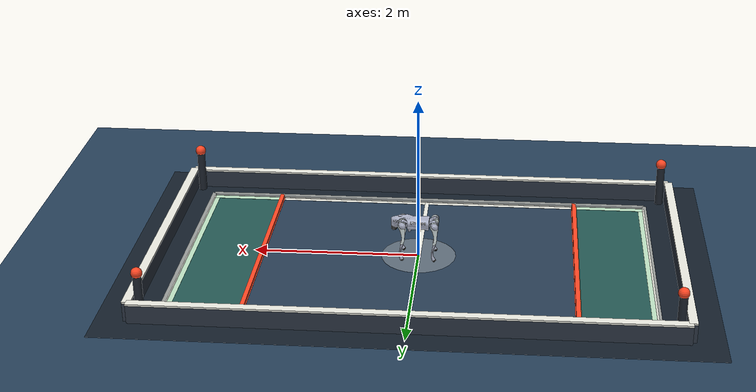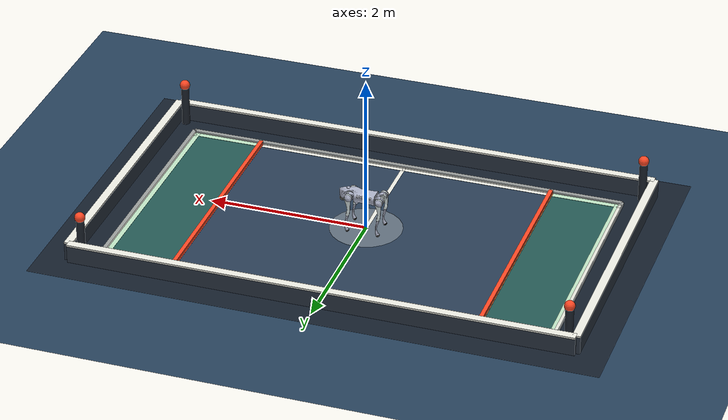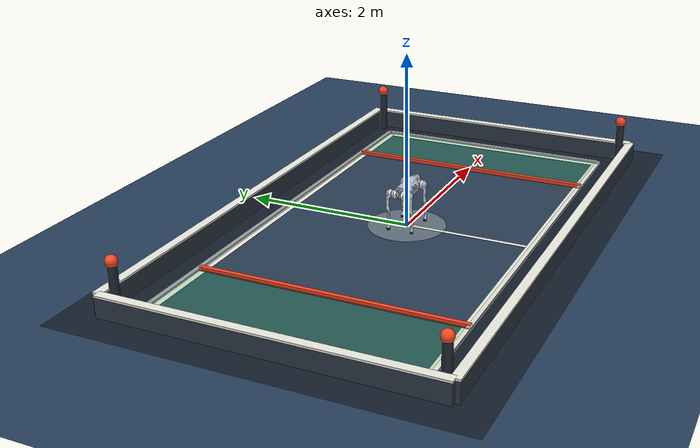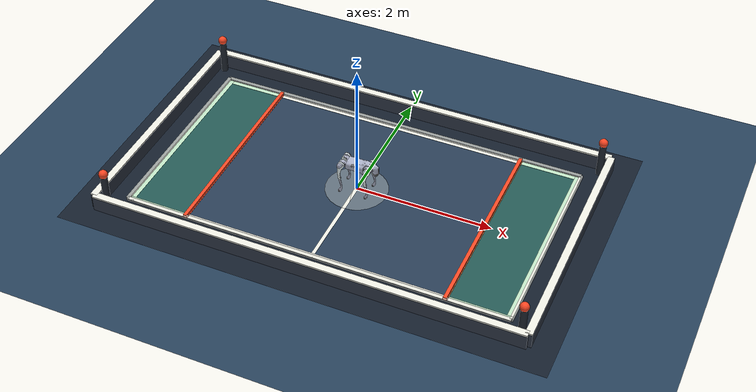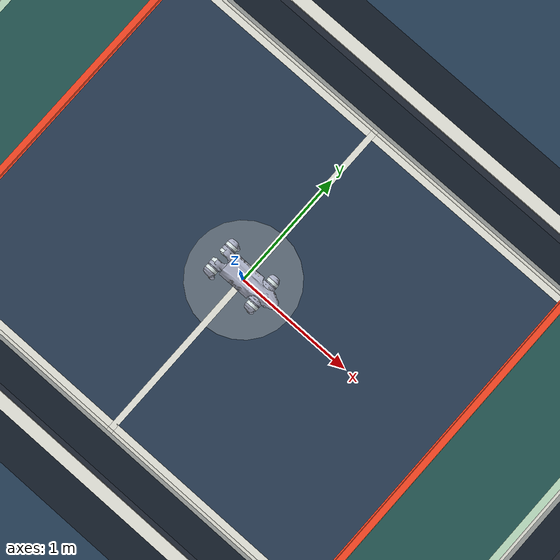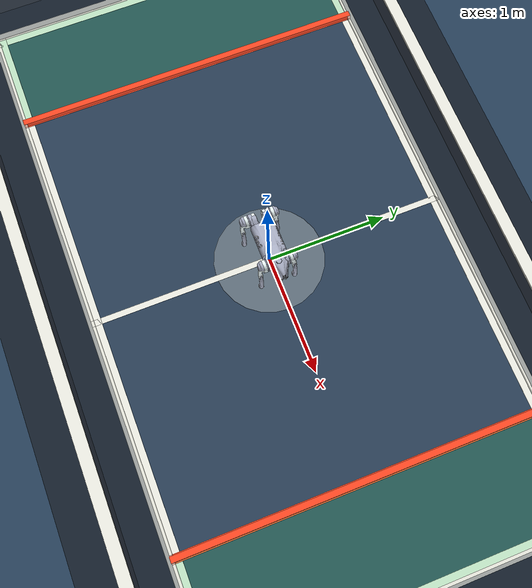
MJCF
<mujoco model="mjlab scene">
  <compiler angle="radian" meshdir="assets" />
  <option timestep="0.005" integrator="implicitfast" iterations="10" ls_iterations="20" ccd_iterations="100" />
  <size nkey="1" />
  <visual>
    <global azimuth="135" elevation="-25" offwidth="1920" offheight="1080" />
    <quality shadowsize="8192" />
    <headlight ambient="0.3 0.3 0.3" diffuse="0.6 0.6 0.6" specular="0 0 0" />
    <scale forcewidth="0.25" contactwidth="0.4" contactheight="0.15" framelength="5" framewidth="0.3" />
    <rgba haze="0.15 0.25 0.35 1" force="1 0 0 1" />
  </visual>
  <statistic meansize="0.03" extent="4" />
  <default>
    <default class="a_main">
      <default class="a_go2">
        <site group="5" rgba="1 0 0 1" />
        <default class="a_visual">
          <geom type="mesh" contype="0" conaffinity="0" group="2" density="0" />
        </default>
        <default class="a_collision">
          <geom condim="6" group="3" priority="1" />
        </default>
      </default>
    </default>
    <default class="b_main">
      <default class="b_go2">
        <site group="5" rgba="1 0 0 1" />
        <default class="b_visual">
          <geom type="mesh" contype="0" conaffinity="0" group="2" density="0" />
        </default>
        <default class="b_collision">
          <geom condim="6" group="3" priority="1" />
        </default>
      </default>
    </default>
  </default>
  <asset>
    <texture type="2d" colorspace="auto" name="groundplane" builtin="checker" mark="edge" rgb1="0.2 0.3 0.4" rgb2="0.1 0.2 0.3" markrgb="0.8 0.8 0.8" width="300" height="300" />
    <material name="groundplane" texture="groundplane" texuniform="true" texrepeat="4 4" />
    <material name="a_metal" rgba="0.9 0.95 0.95 1" />
    <material name="a_black" rgba="0 0 0 1" />
    <material name="a_white" />
    <material name="a_gray" rgba="0.671705 0.692426 0.77427 1" />
    <material name="b_metal" rgba="0.9 0.95 0.95 1" />
    <material name="b_black" rgba="0 0 0 1" />
    <material name="b_white" />
    <material name="b_gray" rgba="0.671705 0.692426 0.77427 1" />
    <mesh name="a_base_0" file="base_0.obj" />
    <mesh name="a_base_1" file="base_1.obj" />
    <mesh name="a_base_2" file="base_2.obj" />
    <mesh name="a_base_3" file="base_3.obj" />
    <mesh name="a_base_4" file="base_4.obj" />
    <mesh name="a_hip_0" file="hip_0.obj" />
    <mesh name="a_hip_1" file="hip_1.obj" />
    <mesh name="a_thigh_0" file="thigh_0.obj" />
    <mesh name="a_thigh_1" file="thigh_1.obj" />
    <mesh name="a_thigh_mirror_0" file="thigh_mirror_0.obj" />
    <mesh name="a_thigh_mirror_1" file="thigh_mirror_1.obj" />
    <mesh name="a_calf_0" file="calf_0.obj" />
    <mesh name="a_calf_1" file="calf_1.obj" />
    <mesh name="a_calf_mirror_0" file="calf_mirror_0.obj" />
    <mesh name="a_calf_mirror_1" file="calf_mirror_1.obj" />
    <mesh name="a_foot" file="foot.obj" />
    <mesh name="b_base_0" file="base_0.obj" />
    <mesh name="b_base_1" file="base_1.obj" />
    <mesh name="b_base_2" file="base_2.obj" />
    <mesh name="b_base_3" file="base_3.obj" />
    <mesh name="b_base_4" file="base_4.obj" />
    <mesh name="b_hip_0" file="hip_0.obj" />
    <mesh name="b_hip_1" file="hip_1.obj" />
    <mesh name="b_thigh_0" file="thigh_0.obj" />
    <mesh name="b_thigh_1" file="thigh_1.obj" />
    <mesh name="b_thigh_mirror_0" file="thigh_mirror_0.obj" />
    <mesh name="b_thigh_mirror_1" file="thigh_mirror_1.obj" />
    <mesh name="b_calf_0" file="calf_0.obj" />
    <mesh name="b_calf_1" file="calf_1.obj" />
    <mesh name="b_calf_mirror_0" file="calf_mirror_0.obj" />
    <mesh name="b_calf_mirror_1" file="calf_mirror_1.obj" />
    <mesh name="b_foot" file="foot.obj" />
  </asset>
  <worldbody>
    <site name="env_origin_0" pos="0 0 0" size="0.3" group="4" rgba="0.2 0.6 0.2 0.3" />
    <light name="sun" pos="0 0 1.5" dir="0 0 -1" type="directional" />
    <body name="terrain">
      <geom name="terrain" size="0 0 0.01" type="plane" material="groundplane" />
    </body>
    <body name="a_base_link" childclass="a_go2" pos="0 0 0.445">
      <inertial pos="0.021112 0 -0.005366" quat="-0.000543471 0.713435 -0.00173769 0.700719" mass="6.921" diaginertia="0.107027 0.0980771 0.0244531" />
      <joint name="a_floating_base_joint" type="free" />
      <geom class="a_visual" material="a_black" mesh="a_base_0" />
      <geom class="a_visual" material="a_black" mesh="a_base_1" />
      <geom class="a_visual" material="a_black" mesh="a_base_2" />
      <geom class="a_visual" material="a_white" mesh="a_base_3" />
      <geom class="a_visual" material="a_gray" mesh="a_base_4" />
      <geom name="a_base1_collision" class="a_collision" size="0.1881 0.04675 0.057" type="box" conaffinity="2" condim="1" priority="0" />
      <geom name="a_base2_collision" class="a_collision" size="0.05 0.045" pos="0.285 0 0.01" type="cylinder" conaffinity="2" condim="1" priority="0" />
      <geom name="a_base3_collision" class="a_collision" size="0.047" pos="0.293 0 -0.06" conaffinity="2" condim="1" priority="0" />
      <site name="a_imu" pos="-0.02557 0 0.04232" />
      <site name="a_corner_FL" pos="0.1881 0.04675 -0.057" group="4" rgba="1 1 0 0.5" />
      <site name="a_corner_FR" pos="0.1881 -0.04675 -0.057" group="4" rgba="1 1 0 0.5" />
      <site name="a_corner_RL" pos="-0.1881 0.04675 -0.057" group="4" rgba="1 1 0 0.5" />
      <site name="a_corner_RR" pos="-0.1881 -0.04675 -0.057" group="4" rgba="1 1 0 0.5" />
      <site name="a_corner_FL_top" pos="0.1881 0.04675 0.057" group="4" rgba="1 0.5 0 0.5" />
      <site name="a_corner_FR_top" pos="0.1881 -0.04675 0.057" group="4" rgba="1 0.5 0 0.5" />
      <site name="a_corner_RL_top" pos="-0.1881 0.04675 0.057" group="4" rgba="1 0.5 0 0.5" />
      <site name="a_corner_RR_top" pos="-0.1881 -0.04675 0.057" group="4" rgba="1 0.5 0 0.5" />
      <site name="a_head_bottom" pos="0.293 0 -0.107" group="4" rgba="1 0 0 0.5" />
      <body name="a_FL_hip" pos="0.1934 0.0465 0">
        <inertial pos="-0.0054 0.00194 -0.000105" quat="0.497014 0.499245 0.505462 0.498237" mass="0.678" diaginertia="0.00088403 0.000596003 0.000479967" />
        <joint name="a_FL_hip_joint" pos="0 0 0" axis="1 0 0" range="-1.0472 1.0472" armature="0.01" />
        <geom class="a_visual" material="a_metal" mesh="a_hip_0" />
        <geom class="a_visual" material="a_gray" mesh="a_hip_1" />
        <geom name="a_FL_hip_collision" class="a_collision" size="0.046 0.02" pos="0 0.08 0" quat="0.707107 0.707107 0 0" type="cylinder" conaffinity="2" condim="1" priority="0" />
        <site name="a_shoulder_FL" pos="0 0.1 0.046" group="4" rgba="1 0 0.5 0.5" />
        <body name="a_FL_thigh" pos="0 0.0955 0">
          <inertial pos="-0.00374 -0.0223 -0.0327" quat="0.829533 0.0847635 -0.0200632 0.551623" mass="1.152" diaginertia="0.00594973 0.00584149 0.000878787" />
          <joint name="a_FL_thigh_joint" pos="0 0 0" axis="0 1 0" range="-1.5708 3.4907" armature="0.01" />
          <geom class="a_visual" material="a_metal" mesh="a_thigh_0" />
          <geom class="a_visual" material="a_gray" mesh="a_thigh_1" />
          <geom name="a_FL_thigh_collision" class="a_collision" size="0.1065 0.01225 0.017" pos="0 0 -0.1065" quat="0.707107 0 0.707107 0" type="box" conaffinity="2" condim="1" priority="0" />
          <body name="a_FL_calf" pos="0 0 -0.213">
            <inertial pos="0.00629595 -0.000622121 -0.141417" quat="0.710672 0.00154099 -0.00450087 0.703508" mass="0.241352" diaginertia="0.0014901 0.00146356 5.31397e-05" />
            <joint name="a_FL_calf_joint" pos="0 0 0" axis="0 1 0" range="-2.7227 -0.83776" armature="0.02" />
            <geom class="a_visual" material="a_gray" mesh="a_calf_0" />
            <geom class="a_visual" material="a_black" mesh="a_calf_1" />
            <geom name="a_FL_calf1_collision" class="a_collision" size="0.012 0.06" pos="0.008 0 -0.06" quat="0.994493 0 -0.104807 0" type="cylinder" conaffinity="2" condim="1" priority="0" />
            <geom name="a_FL_calf2_collision" class="a_collision" size="0.011 0.0325" pos="0.02 0 -0.148" quat="0.999688 0 0.0249974 0" type="cylinder" conaffinity="2" condim="1" priority="0" />
            <geom class="a_visual" pos="0 0 -0.213" quat="1 0 0 0" material="a_black" mesh="a_foot" />
            <geom name="a_FL_foot_collision" class="a_collision" size="0.022" pos="0 0 -0.213" conaffinity="2" condim="3" friction="0.6" solimp="0.9 0.95 0.023" />
            <site name="a_elbow_FL" pos="-0.0165 0 0" group="4" rgba="0 1 1 0.5" />
            <site name="a_toe_FL" pos="-0.002 0 -0.213" group="4" rgba="0 1 0 0.5" />
            <site name="a_FL" pos="0 0 -0.213" size="0.022" />
          </body>
        </body>
      </body>
      <body name="a_FR_hip" pos="0.1934 -0.0465 0">
        <inertial pos="-0.0054 -0.00194 -0.000105" quat="0.498237 0.505462 0.499245 0.497014" mass="0.678" diaginertia="0.00088403 0.000596003 0.000479967" />
        <joint name="a_FR_hip_joint" pos="0 0 0" axis="1 0 0" range="-1.0472 1.0472" armature="0.01" />
        <geom class="a_visual" quat="4.63268e-05 1 0 0" material="a_metal" mesh="a_hip_0" />
        <geom class="a_visual" quat="4.63268e-05 1 0 0" material="a_gray" mesh="a_hip_1" />
        <geom name="a_FR_hip_collision" class="a_collision" size="0.046 0.02" pos="0 -0.08 0" quat="0.707107 0.707107 0 0" type="cylinder" conaffinity="2" condim="1" priority="0" />
        <site name="a_shoulder_FR" pos="0 -0.1 0.046" group="4" rgba="1 0 0.5 0.5" />
        <body name="a_FR_thigh" pos="0 -0.0955 0">
          <inertial pos="-0.00374 0.0223 -0.0327" quat="0.551623 -0.0200632 0.0847635 0.829533" mass="1.152" diaginertia="0.00594973 0.00584149 0.000878787" />
          <joint name="a_FR_thigh_joint" pos="0 0 0" axis="0 1 0" range="-1.5708 3.4907" armature="0.01" />
          <geom class="a_visual" material="a_metal" mesh="a_thigh_mirror_0" />
          <geom class="a_visual" material="a_gray" mesh="a_thigh_mirror_1" />
          <geom name="a_FR_thigh_collision" class="a_collision" size="0.1065 0.01225 0.017" pos="0 0 -0.1065" quat="0.707107 0 0.707107 0" type="box" conaffinity="2" condim="1" priority="0" />
          <body name="a_FR_calf" pos="0 0 -0.213">
            <inertial pos="0.00629595 0.000622121 -0.141417" quat="0.703508 -0.00450087 0.00154099 0.710672" mass="0.241352" diaginertia="0.0014901 0.00146356 5.31397e-05" />
            <joint name="a_FR_calf_joint" pos="0 0 0" axis="0 1 0" range="-2.7227 -0.83776" armature="0.02" />
            <geom class="a_visual" material="a_gray" mesh="a_calf_mirror_0" />
            <geom class="a_visual" material="a_black" mesh="a_calf_mirror_1" />
            <geom name="a_FR_calf1_collision" class="a_collision" size="0.013 0.06" pos="0.01 0 -0.06" quat="0.995004 0 -0.0998334 0" type="cylinder" conaffinity="2" condim="1" priority="0" />
            <geom name="a_FR_calf2_collision" class="a_collision" size="0.011 0.0325" pos="0.02 0 -0.148" quat="0.999688 0 0.0249974 0" type="cylinder" conaffinity="2" condim="1" priority="0" />
            <geom class="a_visual" pos="0 0 -0.213" quat="1 0 0 0" material="a_black" mesh="a_foot" />
            <geom name="a_FR_foot_collision" class="a_collision" size="0.022" pos="0 0 -0.213" conaffinity="2" condim="3" friction="0.6" solimp="0.9 0.95 0.023" />
            <site name="a_elbow_FR" pos="-0.0165 0 0" group="4" rgba="0 1 1 0.5" />
            <site name="a_toe_FR" pos="-0.002 0 -0.213" group="4" rgba="0 1 0 0.5" />
            <site name="a_FR" pos="0 0 -0.213" size="0.022" />
          </body>
        </body>
      </body>
      <body name="a_RL_hip" pos="-0.1934 0.0465 0">
        <inertial pos="0.0054 0.00194 -0.000105" quat="0.505462 0.498237 0.497014 0.499245" mass="0.678" diaginertia="0.00088403 0.000596003 0.000479967" />
        <joint name="a_RL_hip_joint" pos="0 0 0" axis="1 0 0" range="-1.0472 1.0472" armature="0.01" />
        <geom class="a_visual" quat="4.63268e-05 0 1 0" material="a_metal" mesh="a_hip_0" />
        <geom class="a_visual" quat="4.63268e-05 0 1 0" material="a_gray" mesh="a_hip_1" />
        <geom name="a_RL_hip_collision" class="a_collision" size="0.046 0.02" pos="0 0.08 0" quat="0.707107 0.707107 0 0" type="cylinder" conaffinity="2" condim="1" priority="0" />
        <site name="a_shoulder_RL" pos="0 0.1 0.046" group="4" rgba="1 0 0.5 0.5" />
        <body name="a_RL_thigh" pos="0 0.0955 0">
          <inertial pos="-0.00374 -0.0223 -0.0327" quat="0.829533 0.0847635 -0.0200632 0.551623" mass="1.152" diaginertia="0.00594973 0.00584149 0.000878787" />
          <joint name="a_RL_thigh_joint" pos="0 0 0" axis="0 1 0" range="-0.5236 4.5379" armature="0.01" />
          <geom class="a_visual" material="a_metal" mesh="a_thigh_0" />
          <geom class="a_visual" material="a_gray" mesh="a_thigh_1" />
          <geom name="a_RL_thigh_collision" class="a_collision" size="0.1065 0.01225 0.017" pos="0 0 -0.1065" quat="0.707107 0 0.707107 0" type="box" conaffinity="2" condim="1" priority="0" />
          <body name="a_RL_calf" pos="0 0 -0.213">
            <inertial pos="0.00629595 -0.000622121 -0.141417" quat="0.710672 0.00154099 -0.00450087 0.703508" mass="0.241352" diaginertia="0.0014901 0.00146356 5.31397e-05" />
            <joint name="a_RL_calf_joint" pos="0 0 0" axis="0 1 0" range="-2.7227 -0.83776" armature="0.02" />
            <geom class="a_visual" material="a_gray" mesh="a_calf_0" />
            <geom class="a_visual" material="a_black" mesh="a_calf_1" />
            <geom name="a_RL_calf1_collision" class="a_collision" size="0.013 0.06" pos="0.01 0 -0.06" quat="0.995004 0 -0.0998334 0" type="cylinder" conaffinity="2" condim="1" priority="0" />
            <geom name="a_RL_calf2_collision" class="a_collision" size="0.011 0.0325" pos="0.02 0 -0.148" quat="0.999688 0 0.0249974 0" type="cylinder" conaffinity="2" condim="1" priority="0" />
            <geom class="a_visual" pos="0 0 -0.213" quat="1 0 0 0" material="a_black" mesh="a_foot" />
            <geom name="a_RL_foot_collision" class="a_collision" size="0.022" pos="0 0 -0.213" conaffinity="2" condim="3" friction="0.6" solimp="0.9 0.95 0.023" />
            <site name="a_elbow_RL" pos="-0.0165 0 0" group="4" rgba="0 1 1 0.5" />
            <site name="a_toe_RL" pos="-0.002 0 -0.213" group="4" rgba="0 1 0 0.5" />
            <site name="a_RL" pos="0 0 -0.213" size="0.022" />
          </body>
        </body>
      </body>
      <body name="a_RR_hip" pos="-0.1934 -0.0465 0">
        <inertial pos="0.0054 -0.00194 -0.000105" quat="0.499245 0.497014 0.498237 0.505462" mass="0.678" diaginertia="0.00088403 0.000596003 0.000479967" />
        <joint name="a_RR_hip_joint" pos="0 0 0" axis="1 0 0" range="-1.0472 1.0472" armature="0.01" />
        <geom class="a_visual" quat="2.14617e-09 4.63268e-05 4.63268e-05 -1" material="a_metal" mesh="a_hip_0" />
        <geom class="a_visual" quat="2.14617e-09 4.63268e-05 4.63268e-05 -1" material="a_gray" mesh="a_hip_1" />
        <geom name="a_RR_hip_collision" class="a_collision" size="0.046 0.02" pos="0 -0.08 0" quat="0.707107 0.707107 0 0" type="cylinder" conaffinity="2" condim="1" priority="0" />
        <site name="a_shoulder_RR" pos="0 -0.1 0.046" group="4" rgba="1 0 0.5 0.5" />
        <body name="a_RR_thigh" pos="0 -0.0955 0">
          <inertial pos="-0.00374 0.0223 -0.0327" quat="0.551623 -0.0200632 0.0847635 0.829533" mass="1.152" diaginertia="0.00594973 0.00584149 0.000878787" />
          <joint name="a_RR_thigh_joint" pos="0 0 0" axis="0 1 0" range="-0.5236 4.5379" armature="0.01" />
          <geom class="a_visual" material="a_metal" mesh="a_thigh_mirror_0" />
          <geom class="a_visual" material="a_gray" mesh="a_thigh_mirror_1" />
          <geom name="a_RR_thigh_collision" class="a_collision" size="0.1065 0.01225 0.017" pos="0 0 -0.1065" quat="0.707107 0 0.707107 0" type="box" conaffinity="2" condim="1" priority="0" />
          <body name="a_RR_calf" pos="0 0 -0.213">
            <inertial pos="0.00629595 0.000622121 -0.141417" quat="0.703508 -0.00450087 0.00154099 0.710672" mass="0.241352" diaginertia="0.0014901 0.00146356 5.31397e-05" />
            <joint name="a_RR_calf_joint" pos="0 0 0" axis="0 1 0" range="-2.7227 -0.83776" armature="0.02" />
            <geom class="a_visual" material="a_gray" mesh="a_calf_mirror_0" />
            <geom class="a_visual" material="a_black" mesh="a_calf_mirror_1" />
            <geom name="a_RR_calf1_collision" class="a_collision" size="0.013 0.06" pos="0.01 0 -0.06" quat="0.995004 0 -0.0998334 0" type="cylinder" conaffinity="2" condim="1" priority="0" />
            <geom name="a_RR_calf2_collision" class="a_collision" size="0.011 0.0325" pos="0.02 0 -0.148" quat="0.999688 0 0.0249974 0" type="cylinder" conaffinity="2" condim="1" priority="0" />
            <geom class="a_visual" pos="0 0 -0.213" quat="1 0 0 0" material="a_black" mesh="a_foot" />
            <geom name="a_RR_foot_collision" class="a_collision" size="0.022" pos="0 0 -0.213" conaffinity="2" condim="3" friction="0.6" solimp="0.9 0.95 0.023" />
            <site name="a_elbow_RR" pos="-0.0165 0 0" group="4" rgba="0 1 1 0.5" />
            <site name="a_toe_RR" pos="-0.002 0 -0.213" group="4" rgba="0 1 0 0.5" />
            <site name="a_RR" pos="0 0 -0.213" size="0.022" />
          </body>
        </body>
      </body>
    </body>
    <body name="b_base_link" childclass="b_go2" pos="0 0 0.445">
      <inertial pos="0.021112 0 -0.005366" quat="-0.000543471 0.713435 -0.00173769 0.700719" mass="6.921" diaginertia="0.107027 0.0980771 0.0244531" />
      <joint name="b_floating_base_joint" type="free" />
      <geom class="b_visual" material="b_black" mesh="b_base_0" />
      <geom class="b_visual" material="b_black" mesh="b_base_1" />
      <geom class="b_visual" material="b_black" mesh="b_base_2" />
      <geom class="b_visual" material="b_white" mesh="b_base_3" />
      <geom class="b_visual" material="b_gray" mesh="b_base_4" />
      <geom name="b_base1_collision" class="b_collision" size="0.1881 0.04675 0.057" type="box" contype="2" condim="1" priority="0" />
      <geom name="b_base2_collision" class="b_collision" size="0.05 0.045" pos="0.285 0 0.01" type="cylinder" contype="2" condim="1" priority="0" />
      <geom name="b_base3_collision" class="b_collision" size="0.047" pos="0.293 0 -0.06" contype="2" condim="1" priority="0" />
      <site name="b_imu" pos="-0.02557 0 0.04232" />
      <site name="b_corner_FL" pos="0.1881 0.04675 -0.057" group="4" rgba="1 1 0 0.5" />
      <site name="b_corner_FR" pos="0.1881 -0.04675 -0.057" group="4" rgba="1 1 0 0.5" />
      <site name="b_corner_RL" pos="-0.1881 0.04675 -0.057" group="4" rgba="1 1 0 0.5" />
      <site name="b_corner_RR" pos="-0.1881 -0.04675 -0.057" group="4" rgba="1 1 0 0.5" />
      <site name="b_corner_FL_top" pos="0.1881 0.04675 0.057" group="4" rgba="1 0.5 0 0.5" />
      <site name="b_corner_FR_top" pos="0.1881 -0.04675 0.057" group="4" rgba="1 0.5 0 0.5" />
      <site name="b_corner_RL_top" pos="-0.1881 0.04675 0.057" group="4" rgba="1 0.5 0 0.5" />
      <site name="b_corner_RR_top" pos="-0.1881 -0.04675 0.057" group="4" rgba="1 0.5 0 0.5" />
      <site name="b_head_bottom" pos="0.293 0 -0.107" group="4" rgba="1 0 0 0.5" />
      <body name="b_FL_hip" pos="0.1934 0.0465 0">
        <inertial pos="-0.0054 0.00194 -0.000105" quat="0.497014 0.499245 0.505462 0.498237" mass="0.678" diaginertia="0.00088403 0.000596003 0.000479967" />
        <joint name="b_FL_hip_joint" pos="0 0 0" axis="1 0 0" range="-1.0472 1.0472" armature="0.01" />
        <geom class="b_visual" material="b_metal" mesh="b_hip_0" />
        <geom class="b_visual" material="b_gray" mesh="b_hip_1" />
        <geom name="b_FL_hip_collision" class="b_collision" size="0.046 0.02" pos="0 0.08 0" quat="0.707107 0.707107 0 0" type="cylinder" contype="2" condim="1" priority="0" />
        <site name="b_shoulder_FL" pos="0 0.1 0.046" group="4" rgba="1 0 0.5 0.5" />
        <body name="b_FL_thigh" pos="0 0.0955 0">
          <inertial pos="-0.00374 -0.0223 -0.0327" quat="0.829533 0.0847635 -0.0200632 0.551623" mass="1.152" diaginertia="0.00594973 0.00584149 0.000878787" />
          <joint name="b_FL_thigh_joint" pos="0 0 0" axis="0 1 0" range="-1.5708 3.4907" armature="0.01" />
          <geom class="b_visual" material="b_metal" mesh="b_thigh_0" />
          <geom class="b_visual" material="b_gray" mesh="b_thigh_1" />
          <geom name="b_FL_thigh_collision" class="b_collision" size="0.1065 0.01225 0.017" pos="0 0 -0.1065" quat="0.707107 0 0.707107 0" type="box" contype="2" condim="1" priority="0" />
          <body name="b_FL_calf" pos="0 0 -0.213">
            <inertial pos="0.00629595 -0.000622121 -0.141417" quat="0.710672 0.00154099 -0.00450087 0.703508" mass="0.241352" diaginertia="0.0014901 0.00146356 5.31397e-05" />
            <joint name="b_FL_calf_joint" pos="0 0 0" axis="0 1 0" range="-2.7227 -0.83776" armature="0.02" />
            <geom class="b_visual" material="b_gray" mesh="b_calf_0" />
            <geom class="b_visual" material="b_black" mesh="b_calf_1" />
            <geom name="b_FL_calf1_collision" class="b_collision" size="0.012 0.06" pos="0.008 0 -0.06" quat="0.994493 0 -0.104807 0" type="cylinder" contype="2" condim="1" priority="0" />
            <geom name="b_FL_calf2_collision" class="b_collision" size="0.011 0.0325" pos="0.02 0 -0.148" quat="0.999688 0 0.0249974 0" type="cylinder" contype="2" condim="1" priority="0" />
            <geom class="b_visual" pos="0 0 -0.213" quat="1 0 0 0" material="b_black" mesh="b_foot" />
            <geom name="b_FL_foot_collision" class="b_collision" size="0.022" pos="0 0 -0.213" contype="2" condim="3" friction="0.6" solimp="0.9 0.95 0.023" />
            <site name="b_elbow_FL" pos="-0.0165 0 0" group="4" rgba="0 1 1 0.5" />
            <site name="b_toe_FL" pos="-0.002 0 -0.213" group="4" rgba="0 1 0 0.5" />
            <site name="b_FL" pos="0 0 -0.213" size="0.022" />
          </body>
        </body>
      </body>
      <body name="b_FR_hip" pos="0.1934 -0.0465 0">
        <inertial pos="-0.0054 -0.00194 -0.000105" quat="0.498237 0.505462 0.499245 0.497014" mass="0.678" diaginertia="0.00088403 0.000596003 0.000479967" />
        <joint name="b_FR_hip_joint" pos="0 0 0" axis="1 0 0" range="-1.0472 1.0472" armature="0.01" />
        <geom class="b_visual" quat="4.63268e-05 1 0 0" material="b_metal" mesh="b_hip_0" />
        <geom class="b_visual" quat="4.63268e-05 1 0 0" material="b_gray" mesh="b_hip_1" />
        <geom name="b_FR_hip_collision" class="b_collision" size="0.046 0.02" pos="0 -0.08 0" quat="0.707107 0.707107 0 0" type="cylinder" contype="2" condim="1" priority="0" />
        <site name="b_shoulder_FR" pos="0 -0.1 0.046" group="4" rgba="1 0 0.5 0.5" />
        <body name="b_FR_thigh" pos="0 -0.0955 0">
          <inertial pos="-0.00374 0.0223 -0.0327" quat="0.551623 -0.0200632 0.0847635 0.829533" mass="1.152" diaginertia="0.00594973 0.00584149 0.000878787" />
          <joint name="b_FR_thigh_joint" pos="0 0 0" axis="0 1 0" range="-1.5708 3.4907" armature="0.01" />
          <geom class="b_visual" material="b_metal" mesh="b_thigh_mirror_0" />
          <geom class="b_visual" material="b_gray" mesh="b_thigh_mirror_1" />
          <geom name="b_FR_thigh_collision" class="b_collision" size="0.1065 0.01225 0.017" pos="0 0 -0.1065" quat="0.707107 0 0.707107 0" type="box" contype="2" condim="1" priority="0" />
          <body name="b_FR_calf" pos="0 0 -0.213">
            <inertial pos="0.00629595 0.000622121 -0.141417" quat="0.703508 -0.00450087 0.00154099 0.710672" mass="0.241352" diaginertia="0.0014901 0.00146356 5.31397e-05" />
            <joint name="b_FR_calf_joint" pos="0 0 0" axis="0 1 0" range="-2.7227 -0.83776" armature="0.02" />
            <geom class="b_visual" material="b_gray" mesh="b_calf_mirror_0" />
            <geom class="b_visual" material="b_black" mesh="b_calf_mirror_1" />
            <geom name="b_FR_calf1_collision" class="b_collision" size="0.013 0.06" pos="0.01 0 -0.06" quat="0.995004 0 -0.0998334 0" type="cylinder" contype="2" condim="1" priority="0" />
            <geom name="b_FR_calf2_collision" class="b_collision" size="0.011 0.0325" pos="0.02 0 -0.148" quat="0.999688 0 0.0249974 0" type="cylinder" contype="2" condim="1" priority="0" />
            <geom class="b_visual" pos="0 0 -0.213" quat="1 0 0 0" material="b_black" mesh="b_foot" />
            <geom name="b_FR_foot_collision" class="b_collision" size="0.022" pos="0 0 -0.213" contype="2" condim="3" friction="0.6" solimp="0.9 0.95 0.023" />
            <site name="b_elbow_FR" pos="-0.0165 0 0" group="4" rgba="0 1 1 0.5" />
            <site name="b_toe_FR" pos="-0.002 0 -0.213" group="4" rgba="0 1 0 0.5" />
            <site name="b_FR" pos="0 0 -0.213" size="0.022" />
          </body>
        </body>
      </body>
      <body name="b_RL_hip" pos="-0.1934 0.0465 0">
        <inertial pos="0.0054 0.00194 -0.000105" quat="0.505462 0.498237 0.497014 0.499245" mass="0.678" diaginertia="0.00088403 0.000596003 0.000479967" />
        <joint name="b_RL_hip_joint" pos="0 0 0" axis="1 0 0" range="-1.0472 1.0472" armature="0.01" />
        <geom class="b_visual" quat="4.63268e-05 0 1 0" material="b_metal" mesh="b_hip_0" />
        <geom class="b_visual" quat="4.63268e-05 0 1 0" material="b_gray" mesh="b_hip_1" />
        <geom name="b_RL_hip_collision" class="b_collision" size="0.046 0.02" pos="0 0.08 0" quat="0.707107 0.707107 0 0" type="cylinder" contype="2" condim="1" priority="0" />
        <site name="b_shoulder_RL" pos="0 0.1 0.046" group="4" rgba="1 0 0.5 0.5" />
        <body name="b_RL_thigh" pos="0 0.0955 0">
          <inertial pos="-0.00374 -0.0223 -0.0327" quat="0.829533 0.0847635 -0.0200632 0.551623" mass="1.152" diaginertia="0.00594973 0.00584149 0.000878787" />
          <joint name="b_RL_thigh_joint" pos="0 0 0" axis="0 1 0" range="-0.5236 4.5379" armature="0.01" />
          <geom class="b_visual" material="b_metal" mesh="b_thigh_0" />
          <geom class="b_visual" material="b_gray" mesh="b_thigh_1" />
          <geom name="b_RL_thigh_collision" class="b_collision" size="0.1065 0.01225 0.017" pos="0 0 -0.1065" quat="0.707107 0 0.707107 0" type="box" contype="2" condim="1" priority="0" />
          <body name="b_RL_calf" pos="0 0 -0.213">
            <inertial pos="0.00629595 -0.000622121 -0.141417" quat="0.710672 0.00154099 -0.00450087 0.703508" mass="0.241352" diaginertia="0.0014901 0.00146356 5.31397e-05" />
            <joint name="b_RL_calf_joint" pos="0 0 0" axis="0 1 0" range="-2.7227 -0.83776" armature="0.02" />
            <geom class="b_visual" material="b_gray" mesh="b_calf_0" />
            <geom class="b_visual" material="b_black" mesh="b_calf_1" />
            <geom name="b_RL_calf1_collision" class="b_collision" size="0.013 0.06" pos="0.01 0 -0.06" quat="0.995004 0 -0.0998334 0" type="cylinder" contype="2" condim="1" priority="0" />
            <geom name="b_RL_calf2_collision" class="b_collision" size="0.011 0.0325" pos="0.02 0 -0.148" quat="0.999688 0 0.0249974 0" type="cylinder" contype="2" condim="1" priority="0" />
            <geom class="b_visual" pos="0 0 -0.213" quat="1 0 0 0" material="b_black" mesh="b_foot" />
            <geom name="b_RL_foot_collision" class="b_collision" size="0.022" pos="0 0 -0.213" contype="2" condim="3" friction="0.6" solimp="0.9 0.95 0.023" />
            <site name="b_elbow_RL" pos="-0.0165 0 0" group="4" rgba="0 1 1 0.5" />
            <site name="b_toe_RL" pos="-0.002 0 -0.213" group="4" rgba="0 1 0 0.5" />
            <site name="b_RL" pos="0 0 -0.213" size="0.022" />
          </body>
        </body>
      </body>
      <body name="b_RR_hip" pos="-0.1934 -0.0465 0">
        <inertial pos="0.0054 -0.00194 -0.000105" quat="0.499245 0.497014 0.498237 0.505462" mass="0.678" diaginertia="0.00088403 0.000596003 0.000479967" />
        <joint name="b_RR_hip_joint" pos="0 0 0" axis="1 0 0" range="-1.0472 1.0472" armature="0.01" />
        <geom class="b_visual" quat="2.14617e-09 4.63268e-05 4.63268e-05 -1" material="b_metal" mesh="b_hip_0" />
        <geom class="b_visual" quat="2.14617e-09 4.63268e-05 4.63268e-05 -1" material="b_gray" mesh="b_hip_1" />
        <geom name="b_RR_hip_collision" class="b_collision" size="0.046 0.02" pos="0 -0.08 0" quat="0.707107 0.707107 0 0" type="cylinder" contype="2" condim="1" priority="0" />
        <site name="b_shoulder_RR" pos="0 -0.1 0.046" group="4" rgba="1 0 0.5 0.5" />
        <body name="b_RR_thigh" pos="0 -0.0955 0">
          <inertial pos="-0.00374 0.0223 -0.0327" quat="0.551623 -0.0200632 0.0847635 0.829533" mass="1.152" diaginertia="0.00594973 0.00584149 0.000878787" />
          <joint name="b_RR_thigh_joint" pos="0 0 0" axis="0 1 0" range="-0.5236 4.5379" armature="0.01" />
          <geom class="b_visual" material="b_metal" mesh="b_thigh_mirror_0" />
          <geom class="b_visual" material="b_gray" mesh="b_thigh_mirror_1" />
          <geom name="b_RR_thigh_collision" class="b_collision" size="0.1065 0.01225 0.017" pos="0 0 -0.1065" quat="0.707107 0 0.707107 0" type="box" contype="2" condim="1" priority="0" />
          <body name="b_RR_calf" pos="0 0 -0.213">
            <inertial pos="0.00629595 0.000622121 -0.141417" quat="0.703508 -0.00450087 0.00154099 0.710672" mass="0.241352" diaginertia="0.0014901 0.00146356 5.31397e-05" />
            <joint name="b_RR_calf_joint" pos="0 0 0" axis="0 1 0" range="-2.7227 -0.83776" armature="0.02" />
            <geom class="b_visual" material="b_gray" mesh="b_calf_mirror_0" />
            <geom class="b_visual" material="b_black" mesh="b_calf_mirror_1" />
            <geom name="b_RR_calf1_collision" class="b_collision" size="0.013 0.06" pos="0.01 0 -0.06" quat="0.995004 0 -0.0998334 0" type="cylinder" contype="2" condim="1" priority="0" />
            <geom name="b_RR_calf2_collision" class="b_collision" size="0.011 0.0325" pos="0.02 0 -0.148" quat="0.999688 0 0.0249974 0" type="cylinder" contype="2" condim="1" priority="0" />
            <geom class="b_visual" pos="0 0 -0.213" quat="1 0 0 0" material="b_black" mesh="b_foot" />
            <geom name="b_RR_foot_collision" class="b_collision" size="0.022" pos="0 0 -0.213" contype="2" condim="3" friction="0.6" solimp="0.9 0.95 0.023" />
            <site name="b_elbow_RR" pos="-0.0165 0 0" group="4" rgba="0 1 1 0.5" />
            <site name="b_toe_RR" pos="-0.002 0 -0.213" group="4" rgba="0 1 0 0.5" />
            <site name="b_RR" pos="0 0 -0.213" size="0.022" />
          </body>
        </body>
      </body>
    </body>
    <body name="touchdown_field_markers">
      <geom name="field_x_min" size="0.025 1.5 0.025" pos="-2.8 0 0.018" type="box" contype="0" conaffinity="0" group="2" density="0" rgba="0.92 0.92 0.88 0.65" />
      <geom name="field_x_max" size="0.025 1.5 0.025" pos="2.8 0 0.018" type="box" contype="0" conaffinity="0" group="2" density="0" rgba="0.92 0.92 0.88 0.65" />
      <geom name="field_y_min" size="2.8 0.025 0.025" pos="0 -1.5 0.018" type="box" contype="0" conaffinity="0" group="2" density="0" rgba="0.92 0.92 0.88 0.65" />
      <geom name="field_y_max" size="2.8 0.025 0.025" pos="0 1.5 0.018" type="box" contype="0" conaffinity="0" group="2" density="0" rgba="0.92 0.92 0.88 0.65" />
      <geom name="touchdown_line" size="0.025 1.5 0.025" pos="1.9 0 0.022" type="box" contype="0" conaffinity="0" group="2" density="0" rgba="1 0.28 0.14 0.9" />
      <geom name="touchdown_region" size="0.45 1.5 0.004" pos="2.35 0 0.012" type="box" contype="0" conaffinity="0" group="2" density="0" rgba="0.1 0.8 0.35 0.18" />
      <geom name="touchdown_line_b" size="0.025 1.5 0.025" pos="-1.9 0 0.022" type="box" contype="0" conaffinity="0" group="2" density="0" rgba="1 0.28 0.14 0.9" />
      <geom name="touchdown_region_b" size="0.45 1.5 0.004" pos="-2.35 0 0.012" type="box" contype="0" conaffinity="0" group="2" density="0" rgba="0.1 0.8 0.35 0.18" />
    </body>
    <body name="arena_decor">
      <geom name="decor_apron" type="box" pos="0 0 0.00125" size="3.5 2.2 0.00075" rgba="0.08 0.12 0.17 1" contype="0" conaffinity="0" density="0" group="2" />
      <geom name="decor_surface" type="box" pos="0 0 0.00275" size="2.8 1.5 0.00075" rgba="0.16 0.24 0.33 1" contype="0" conaffinity="0" density="0" group="2" />
      <geom name="decor_endzone" type="box" pos="2.35 0 0.00425" size="0.45 1.5 0.00075" rgba="0.1 0.8 0.35 0.45" contype="0" conaffinity="0" density="0" group="2" />
      <geom name="decor_line" type="box" pos="1.9 0 0.00725" size="0.035 1.5 0.00075" rgba="1 0.28 0.14 1" contype="0" conaffinity="0" density="0" group="2" />
      <geom name="decor_endzone_b" type="box" pos="-2.35 0 0.00425" size="0.45 1.5 0.00075" rgba="0.1 0.8 0.35 0.45" contype="0" conaffinity="0" density="0" group="2" />
      <geom name="decor_line_b" type="box" pos="-1.9 0 0.00725" size="0.035 1.5 0.00075" rgba="1 0.28 0.14 1" contype="0" conaffinity="0" density="0" group="2" />
      <geom name="decor_touchline_y_min" type="box" pos="0 -1.46 0.00575" size="2.8 0.04 0.00075" rgba="0.92 0.92 0.88 0.95" contype="0" conaffinity="0" density="0" group="2" />
      <geom name="decor_touchline_y_max" type="box" pos="0 1.46 0.00575" size="2.8 0.04 0.00075" rgba="0.92 0.92 0.88 0.95" contype="0" conaffinity="0" density="0" group="2" />
      <geom name="decor_goalline_x_min" type="box" pos="-2.76 0 0.00575" size="0.04 1.5 0.00075" rgba="0.92 0.92 0.88 0.95" contype="0" conaffinity="0" density="0" group="2" />
      <geom name="decor_goalline_x_max" type="box" pos="2.76 0 0.00575" size="0.04 1.5 0.00075" rgba="0.92 0.92 0.88 0.95" contype="0" conaffinity="0" density="0" group="2" />
      <geom name="decor_halfway" type="box" pos="0 0 0.00575" size="0.025 1.5 0.00075" rgba="0.92 0.92 0.88 0.95" contype="0" conaffinity="0" density="0" group="2" />
      <geom name="decor_centre_circle" type="cylinder" pos="0 0 0.00575" size="0.45 0.00075" rgba="0.92 0.92 0.88 0.3" contype="0" conaffinity="0" density="0" group="2" />
      <geom name="decor_post_0" type="cylinder" pos="-3 -1.7 0.26" size="0.05 0.26" rgba="0.14 0.17 0.21 1" contype="0" conaffinity="0" density="0" group="2" />
      <geom name="decor_post_cap_0" type="sphere" pos="-3 -1.7 0.55" size="0.065" rgba="1 0.28 0.14 1" contype="0" conaffinity="0" density="0" group="2" />
      <geom name="decor_post_1" type="cylinder" pos="-3 1.7 0.26" size="0.05 0.26" rgba="0.14 0.17 0.21 1" contype="0" conaffinity="0" density="0" group="2" />
      <geom name="decor_post_cap_1" type="sphere" pos="-3 1.7 0.55" size="0.065" rgba="1 0.28 0.14 1" contype="0" conaffinity="0" density="0" group="2" />
      <geom name="decor_post_2" type="cylinder" pos="3 -1.7 0.26" size="0.05 0.26" rgba="0.14 0.17 0.21 1" contype="0" conaffinity="0" density="0" group="2" />
      <geom name="decor_post_cap_2" type="sphere" pos="3 -1.7 0.55" size="0.065" rgba="1 0.28 0.14 1" contype="0" conaffinity="0" density="0" group="2" />
      <geom name="decor_post_3" type="cylinder" pos="3 1.7 0.26" size="0.05 0.26" rgba="0.14 0.17 0.21 1" contype="0" conaffinity="0" density="0" group="2" />
      <geom name="decor_post_cap_3" type="sphere" pos="3 1.7 0.55" size="0.065" rgba="1 0.28 0.14 1" contype="0" conaffinity="0" density="0" group="2" />
      <geom name="decor_barrier_y_min" type="box" pos="0 -1.82 0.11" size="3.12 0.05 0.11" rgba="0.2 0.24 0.3 1" contype="0" conaffinity="0" density="0" group="2" />
      <geom name="decor_barrier_y_min_top" type="box" pos="0 -1.82 0.232" size="3.12 0.05 0.012" rgba="0.92 0.92 0.88 1" contype="0" conaffinity="0" density="0" group="2" />
      <geom name="decor_barrier_y_max" type="box" pos="0 1.82 0.11" size="3.12 0.05 0.11" rgba="0.2 0.24 0.3 1" contype="0" conaffinity="0" density="0" group="2" />
      <geom name="decor_barrier_y_max_top" type="box" pos="0 1.82 0.232" size="3.12 0.05 0.012" rgba="0.92 0.92 0.88 1" contype="0" conaffinity="0" density="0" group="2" />
      <geom name="decor_barrier_x_min" type="box" pos="-3.12 0 0.11" size="0.05 1.82 0.11" rgba="0.2 0.24 0.3 1" contype="0" conaffinity="0" density="0" group="2" />
      <geom name="decor_barrier_x_min_top" type="box" pos="-3.12 0 0.232" size="0.05 1.82 0.012" rgba="0.92 0.92 0.88 1" contype="0" conaffinity="0" density="0" group="2" />
      <geom name="decor_barrier_x_max" type="box" pos="3.12 0 0.11" size="0.05 1.82 0.11" rgba="0.2 0.24 0.3 1" contype="0" conaffinity="0" density="0" group="2" />
      <geom name="decor_barrier_x_max_top" type="box" pos="3.12 0 0.232" size="0.05 1.82 0.012" rgba="0.92 0.92 0.88 1" contype="0" conaffinity="0" density="0" group="2" />
    </body>
  </worldbody>
  <actuator>
    <general name="a_FL_hip_joint" joint="a_FL_hip_joint" ctrllimited="false" ctrlrange="-2.2222 2.2222" forcelimited="true" forcerange="-23.5 23.5" biastype="affine" gainprm="20" biasprm="0 -20 -1" />
    <general name="a_FR_hip_joint" joint="a_FR_hip_joint" ctrllimited="false" ctrlrange="-2.2222 2.2222" forcelimited="true" forcerange="-23.5 23.5" biastype="affine" gainprm="20" biasprm="0 -20 -1" />
    <general name="a_RL_hip_joint" joint="a_RL_hip_joint" ctrllimited="false" ctrlrange="-2.2222 2.2222" forcelimited="true" forcerange="-23.5 23.5" biastype="affine" gainprm="20" biasprm="0 -20 -1" />
    <general name="a_RR_hip_joint" joint="a_RR_hip_joint" ctrllimited="false" ctrlrange="-2.2222 2.2222" forcelimited="true" forcerange="-23.5 23.5" biastype="affine" gainprm="20" biasprm="0 -20 -1" />
    <general name="a_FL_thigh_joint" joint="a_FL_thigh_joint" ctrllimited="false" ctrlrange="-2.7458 4.6657" forcelimited="true" forcerange="-23.5 23.5" biastype="affine" gainprm="20" biasprm="0 -20 -1" />
    <general name="a_FR_thigh_joint" joint="a_FR_thigh_joint" ctrllimited="false" ctrlrange="-2.7458 4.6657" forcelimited="true" forcerange="-23.5 23.5" biastype="affine" gainprm="20" biasprm="0 -20 -1" />
    <general name="a_RL_thigh_joint" joint="a_RL_thigh_joint" ctrllimited="false" ctrlrange="-1.6986 5.7129" forcelimited="true" forcerange="-23.5 23.5" biastype="affine" gainprm="20" biasprm="0 -20 -1" />
    <general name="a_RR_thigh_joint" joint="a_RR_thigh_joint" ctrllimited="false" ctrlrange="-1.6986 5.7129" forcelimited="true" forcerange="-23.5 23.5" biastype="affine" gainprm="20" biasprm="0 -20 -1" />
    <general name="a_FL_calf_joint" joint="a_FL_calf_joint" ctrllimited="false" ctrlrange="-3.8477 0.28724" forcelimited="true" forcerange="-45 45" biastype="affine" gainprm="40" biasprm="0 -40 -2" />
    <general name="a_FR_calf_joint" joint="a_FR_calf_joint" ctrllimited="false" ctrlrange="-3.8477 0.28724" forcelimited="true" forcerange="-45 45" biastype="affine" gainprm="40" biasprm="0 -40 -2" />
    <general name="a_RL_calf_joint" joint="a_RL_calf_joint" ctrllimited="false" ctrlrange="-3.8477 0.28724" forcelimited="true" forcerange="-45 45" biastype="affine" gainprm="40" biasprm="0 -40 -2" />
    <general name="a_RR_calf_joint" joint="a_RR_calf_joint" ctrllimited="false" ctrlrange="-3.8477 0.28724" forcelimited="true" forcerange="-45 45" biastype="affine" gainprm="40" biasprm="0 -40 -2" />
    <general name="b_FL_hip_joint" joint="b_FL_hip_joint" ctrllimited="false" ctrlrange="-2.2222 2.2222" forcelimited="true" forcerange="-23.5 23.5" biastype="affine" gainprm="20" biasprm="0 -20 -1" />
    <general name="b_FR_hip_joint" joint="b_FR_hip_joint" ctrllimited="false" ctrlrange="-2.2222 2.2222" forcelimited="true" forcerange="-23.5 23.5" biastype="affine" gainprm="20" biasprm="0 -20 -1" />
    <general name="b_RL_hip_joint" joint="b_RL_hip_joint" ctrllimited="false" ctrlrange="-2.2222 2.2222" forcelimited="true" forcerange="-23.5 23.5" biastype="affine" gainprm="20" biasprm="0 -20 -1" />
    <general name="b_RR_hip_joint" joint="b_RR_hip_joint" ctrllimited="false" ctrlrange="-2.2222 2.2222" forcelimited="true" forcerange="-23.5 23.5" biastype="affine" gainprm="20" biasprm="0 -20 -1" />
    <general name="b_FL_thigh_joint" joint="b_FL_thigh_joint" ctrllimited="false" ctrlrange="-2.7458 4.6657" forcelimited="true" forcerange="-23.5 23.5" biastype="affine" gainprm="20" biasprm="0 -20 -1" />
    <general name="b_FR_thigh_joint" joint="b_FR_thigh_joint" ctrllimited="false" ctrlrange="-2.7458 4.6657" forcelimited="true" forcerange="-23.5 23.5" biastype="affine" gainprm="20" biasprm="0 -20 -1" />
    <general name="b_RL_thigh_joint" joint="b_RL_thigh_joint" ctrllimited="false" ctrlrange="-1.6986 5.7129" forcelimited="true" forcerange="-23.5 23.5" biastype="affine" gainprm="20" biasprm="0 -20 -1" />
    <general name="b_RR_thigh_joint" joint="b_RR_thigh_joint" ctrllimited="false" ctrlrange="-1.6986 5.7129" forcelimited="true" forcerange="-23.5 23.5" biastype="affine" gainprm="20" biasprm="0 -20 -1" />
    <general name="b_FL_calf_joint" joint="b_FL_calf_joint" ctrllimited="false" ctrlrange="-3.8477 0.28724" forcelimited="true" forcerange="-45 45" biastype="affine" gainprm="40" biasprm="0 -40 -2" />
    <general name="b_FR_calf_joint" joint="b_FR_calf_joint" ctrllimited="false" ctrlrange="-3.8477 0.28724" forcelimited="true" forcerange="-45 45" biastype="affine" gainprm="40" biasprm="0 -40 -2" />
    <general name="b_RL_calf_joint" joint="b_RL_calf_joint" ctrllimited="false" ctrlrange="-3.8477 0.28724" forcelimited="true" forcerange="-45 45" biastype="affine" gainprm="40" biasprm="0 -40 -2" />
    <general name="b_RR_calf_joint" joint="b_RR_calf_joint" ctrllimited="false" ctrlrange="-3.8477 0.28724" forcelimited="true" forcerange="-45 45" biastype="affine" gainprm="40" biasprm="0 -40 -2" />
  </actuator>
  <sensor>
    <gyro site="a_imu" name="a_imu_ang_vel" />
    <velocimeter site="a_imu" name="a_imu_lin_vel" />
    <accelerometer site="a_imu" name="a_imu_lin_acc" />
    <subtreeangmom body="a_base_link" name="a_root_angmom" />
    <gyro site="b_imu" name="b_imu_ang_vel" />
    <velocimeter site="b_imu" name="b_imu_lin_vel" />
    <accelerometer site="b_imu" name="b_imu_lin_acc" />
    <subtreeangmom body="b_base_link" name="b_root_angmom" />
    <contact geom1="a_FL_foot_collision" body2="terrain" reduce="netforce" name="a_feet_ground_contact_FL_foot_collision_found" />
    <contact geom1="a_FL_foot_collision" body2="terrain" data="force" reduce="netforce" name="a_feet_ground_contact_FL_foot_collision_force" />
    <contact geom1="a_FR_foot_collision" body2="terrain" reduce="netforce" name="a_feet_ground_contact_FR_foot_collision_found" />
    <contact geom1="a_FR_foot_collision" body2="terrain" data="force" reduce="netforce" name="a_feet_ground_contact_FR_foot_collision_force" />
    <contact geom1="a_RL_foot_collision" body2="terrain" reduce="netforce" name="a_feet_ground_contact_RL_foot_collision_found" />
    <contact geom1="a_RL_foot_collision" body2="terrain" data="force" reduce="netforce" name="a_feet_ground_contact_RL_foot_collision_force" />
    <contact geom1="a_RR_foot_collision" body2="terrain" reduce="netforce" name="a_feet_ground_contact_RR_foot_collision_found" />
    <contact geom1="a_RR_foot_collision" body2="terrain" data="force" reduce="netforce" name="a_feet_ground_contact_RR_foot_collision_force" />
    <contact geom1="a_FL_thigh_collision" body2="terrain" reduce="netforce" name="a_limb_ground_contact_FL_thigh_collision_found" />
    <contact geom1="a_FL_calf1_collision" body2="terrain" reduce="netforce" name="a_limb_ground_contact_FL_calf1_collision_found" />
    <contact geom1="a_FR_thigh_collision" body2="terrain" reduce="netforce" name="a_limb_ground_contact_FR_thigh_collision_found" />
    <contact geom1="a_FR_calf1_collision" body2="terrain" reduce="netforce" name="a_limb_ground_contact_FR_calf1_collision_found" />
    <contact geom1="a_RL_thigh_collision" body2="terrain" reduce="netforce" name="a_limb_ground_contact_RL_thigh_collision_found" />
    <contact geom1="a_RL_calf1_collision" body2="terrain" reduce="netforce" name="a_limb_ground_contact_RL_calf1_collision_found" />
    <contact geom1="a_RR_thigh_collision" body2="terrain" reduce="netforce" name="a_limb_ground_contact_RR_thigh_collision_found" />
    <contact geom1="a_RR_calf1_collision" body2="terrain" reduce="netforce" name="a_limb_ground_contact_RR_calf1_collision_found" />
    <contact geom1="b_FL_foot_collision" body2="terrain" reduce="netforce" name="b_feet_ground_contact_FL_foot_collision_found" />
    <contact geom1="b_FL_foot_collision" body2="terrain" data="force" reduce="netforce" name="b_feet_ground_contact_FL_foot_collision_force" />
    <contact geom1="b_FR_foot_collision" body2="terrain" reduce="netforce" name="b_feet_ground_contact_FR_foot_collision_found" />
    <contact geom1="b_FR_foot_collision" body2="terrain" data="force" reduce="netforce" name="b_feet_ground_contact_FR_foot_collision_force" />
    <contact geom1="b_RL_foot_collision" body2="terrain" reduce="netforce" name="b_feet_ground_contact_RL_foot_collision_found" />
    <contact geom1="b_RL_foot_collision" body2="terrain" data="force" reduce="netforce" name="b_feet_ground_contact_RL_foot_collision_force" />
    <contact geom1="b_RR_foot_collision" body2="terrain" reduce="netforce" name="b_feet_ground_contact_RR_foot_collision_found" />
    <contact geom1="b_RR_foot_collision" body2="terrain" data="force" reduce="netforce" name="b_feet_ground_contact_RR_foot_collision_force" />
    <contact geom1="b_FL_thigh_collision" body2="terrain" reduce="netforce" name="b_limb_ground_contact_FL_thigh_collision_found" />
    <contact geom1="b_FL_calf1_collision" body2="terrain" reduce="netforce" name="b_limb_ground_contact_FL_calf1_collision_found" />
    <contact geom1="b_FR_thigh_collision" body2="terrain" reduce="netforce" name="b_limb_ground_contact_FR_thigh_collision_found" />
    <contact geom1="b_FR_calf1_collision" body2="terrain" reduce="netforce" name="b_limb_ground_contact_FR_calf1_collision_found" />
    <contact geom1="b_RL_thigh_collision" body2="terrain" reduce="netforce" name="b_limb_ground_contact_RL_thigh_collision_found" />
    <contact geom1="b_RL_calf1_collision" body2="terrain" reduce="netforce" name="b_limb_ground_contact_RL_calf1_collision_found" />
    <contact geom1="b_RR_thigh_collision" body2="terrain" reduce="netforce" name="b_limb_ground_contact_RR_thigh_collision_found" />
    <contact geom1="b_RR_calf1_collision" body2="terrain" reduce="netforce" name="b_limb_ground_contact_RR_calf1_collision_found" />
    <contact geom1="a_base1_collision" subtree2="b_base_link" reduce="netforce" name="a_vs_b_trunk_base1_collision_found" />
    <contact geom1="a_base2_collision" subtree2="b_base_link" reduce="netforce" name="a_vs_b_trunk_base2_collision_found" />
    <contact geom1="a_base3_collision" subtree2="b_base_link" reduce="netforce" name="a_vs_b_trunk_base3_collision_found" />
    <contact geom1="a_FL_hip_collision" subtree2="b_base_link" reduce="netforce" name="a_vs_b_trunk_FL_hip_collision_found" />
    <contact geom1="a_FL_thigh_collision" subtree2="b_base_link" reduce="netforce" name="a_vs_b_trunk_FL_thigh_collision_found" />
    <contact geom1="a_FL_calf1_collision" subtree2="b_base_link" reduce="netforce" name="a_vs_b_trunk_FL_calf1_collision_found" />
    <contact geom1="a_FL_calf2_collision" subtree2="b_base_link" reduce="netforce" name="a_vs_b_trunk_FL_calf2_collision_found" />
    <contact geom1="a_FL_foot_collision" subtree2="b_base_link" reduce="netforce" name="a_vs_b_trunk_FL_foot_collision_found" />
    <contact geom1="a_FR_hip_collision" subtree2="b_base_link" reduce="netforce" name="a_vs_b_trunk_FR_hip_collision_found" />
    <contact geom1="a_FR_thigh_collision" subtree2="b_base_link" reduce="netforce" name="a_vs_b_trunk_FR_thigh_collision_found" />
    <contact geom1="a_FR_calf1_collision" subtree2="b_base_link" reduce="netforce" name="a_vs_b_trunk_FR_calf1_collision_found" />
    <contact geom1="a_FR_calf2_collision" subtree2="b_base_link" reduce="netforce" name="a_vs_b_trunk_FR_calf2_collision_found" />
    <contact geom1="a_FR_foot_collision" subtree2="b_base_link" reduce="netforce" name="a_vs_b_trunk_FR_foot_collision_found" />
    <contact geom1="a_RL_hip_collision" subtree2="b_base_link" reduce="netforce" name="a_vs_b_trunk_RL_hip_collision_found" />
    <contact geom1="a_RL_thigh_collision" subtree2="b_base_link" reduce="netforce" name="a_vs_b_trunk_RL_thigh_collision_found" />
    <contact geom1="a_RL_calf1_collision" subtree2="b_base_link" reduce="netforce" name="a_vs_b_trunk_RL_calf1_collision_found" />
    <contact geom1="a_RL_calf2_collision" subtree2="b_base_link" reduce="netforce" name="a_vs_b_trunk_RL_calf2_collision_found" />
    <contact geom1="a_RL_foot_collision" subtree2="b_base_link" reduce="netforce" name="a_vs_b_trunk_RL_foot_collision_found" />
    <contact geom1="a_RR_hip_collision" subtree2="b_base_link" reduce="netforce" name="a_vs_b_trunk_RR_hip_collision_found" />
    <contact geom1="a_RR_thigh_collision" subtree2="b_base_link" reduce="netforce" name="a_vs_b_trunk_RR_thigh_collision_found" />
    <contact geom1="a_RR_calf1_collision" subtree2="b_base_link" reduce="netforce" name="a_vs_b_trunk_RR_calf1_collision_found" />
    <contact geom1="a_RR_calf2_collision" subtree2="b_base_link" reduce="netforce" name="a_vs_b_trunk_RR_calf2_collision_found" />
    <contact geom1="a_RR_foot_collision" subtree2="b_base_link" reduce="netforce" name="a_vs_b_trunk_RR_foot_collision_found" />
    <contact geom1="b_base1_collision" subtree2="a_base_link" reduce="netforce" name="b_vs_a_trunk_base1_collision_found" />
    <contact geom1="b_base2_collision" subtree2="a_base_link" reduce="netforce" name="b_vs_a_trunk_base2_collision_found" />
    <contact geom1="b_base3_collision" subtree2="a_base_link" reduce="netforce" name="b_vs_a_trunk_base3_collision_found" />
    <contact geom1="b_FL_hip_collision" subtree2="a_base_link" reduce="netforce" name="b_vs_a_trunk_FL_hip_collision_found" />
    <contact geom1="b_FL_thigh_collision" subtree2="a_base_link" reduce="netforce" name="b_vs_a_trunk_FL_thigh_collision_found" />
    <contact geom1="b_FL_calf1_collision" subtree2="a_base_link" reduce="netforce" name="b_vs_a_trunk_FL_calf1_collision_found" />
    <contact geom1="b_FL_calf2_collision" subtree2="a_base_link" reduce="netforce" name="b_vs_a_trunk_FL_calf2_collision_found" />
    <contact geom1="b_FL_foot_collision" subtree2="a_base_link" reduce="netforce" name="b_vs_a_trunk_FL_foot_collision_found" />
    <contact geom1="b_FR_hip_collision" subtree2="a_base_link" reduce="netforce" name="b_vs_a_trunk_FR_hip_collision_found" />
    <contact geom1="b_FR_thigh_collision" subtree2="a_base_link" reduce="netforce" name="b_vs_a_trunk_FR_thigh_collision_found" />
    <contact geom1="b_FR_calf1_collision" subtree2="a_base_link" reduce="netforce" name="b_vs_a_trunk_FR_calf1_collision_found" />
    <contact geom1="b_FR_calf2_collision" subtree2="a_base_link" reduce="netforce" name="b_vs_a_trunk_FR_calf2_collision_found" />
    <contact geom1="b_FR_foot_collision" subtree2="a_base_link" reduce="netforce" name="b_vs_a_trunk_FR_foot_collision_found" />
    <contact geom1="b_RL_hip_collision" subtree2="a_base_link" reduce="netforce" name="b_vs_a_trunk_RL_hip_collision_found" />
    <contact geom1="b_RL_thigh_collision" subtree2="a_base_link" reduce="netforce" name="b_vs_a_trunk_RL_thigh_collision_found" />
    <contact geom1="b_RL_calf1_collision" subtree2="a_base_link" reduce="netforce" name="b_vs_a_trunk_RL_calf1_collision_found" />
    <contact geom1="b_RL_calf2_collision" subtree2="a_base_link" reduce="netforce" name="b_vs_a_trunk_RL_calf2_collision_found" />
    <contact geom1="b_RL_foot_collision" subtree2="a_base_link" reduce="netforce" name="b_vs_a_trunk_RL_foot_collision_found" />
    <contact geom1="b_RR_hip_collision" subtree2="a_base_link" reduce="netforce" name="b_vs_a_trunk_RR_hip_collision_found" />
    <contact geom1="b_RR_thigh_collision" subtree2="a_base_link" reduce="netforce" name="b_vs_a_trunk_RR_thigh_collision_found" />
    <contact geom1="b_RR_calf1_collision" subtree2="a_base_link" reduce="netforce" name="b_vs_a_trunk_RR_calf1_collision_found" />
    <contact geom1="b_RR_calf2_collision" subtree2="a_base_link" reduce="netforce" name="b_vs_a_trunk_RR_calf2_collision_found" />
    <contact geom1="b_RR_foot_collision" subtree2="a_base_link" reduce="netforce" name="b_vs_a_trunk_RR_foot_collision_found" />
    <contact geom1="a_base1_collision" subtree2="b_base_link" reduce="netforce" name="a_vs_b_base1_collision_found" />
    <contact geom1="a_base2_collision" subtree2="b_base_link" reduce="netforce" name="a_vs_b_base2_collision_found" />
    <contact geom1="a_base3_collision" subtree2="b_base_link" reduce="netforce" name="a_vs_b_base3_collision_found" />
    <contact geom1="a_FL_hip_collision" subtree2="b_base_link" reduce="netforce" name="a_vs_b_FL_hip_collision_found" />
    <contact geom1="a_FL_thigh_collision" subtree2="b_base_link" reduce="netforce" name="a_vs_b_FL_thigh_collision_found" />
    <contact geom1="a_FL_calf1_collision" subtree2="b_base_link" reduce="netforce" name="a_vs_b_FL_calf1_collision_found" />
    <contact geom1="a_FL_calf2_collision" subtree2="b_base_link" reduce="netforce" name="a_vs_b_FL_calf2_collision_found" />
    <contact geom1="a_FL_foot_collision" subtree2="b_base_link" reduce="netforce" name="a_vs_b_FL_foot_collision_found" />
    <contact geom1="a_FR_hip_collision" subtree2="b_base_link" reduce="netforce" name="a_vs_b_FR_hip_collision_found" />
    <contact geom1="a_FR_thigh_collision" subtree2="b_base_link" reduce="netforce" name="a_vs_b_FR_thigh_collision_found" />
    <contact geom1="a_FR_calf1_collision" subtree2="b_base_link" reduce="netforce" name="a_vs_b_FR_calf1_collision_found" />
    <contact geom1="a_FR_calf2_collision" subtree2="b_base_link" reduce="netforce" name="a_vs_b_FR_calf2_collision_found" />
    <contact geom1="a_FR_foot_collision" subtree2="b_base_link" reduce="netforce" name="a_vs_b_FR_foot_collision_found" />
    <contact geom1="a_RL_hip_collision" subtree2="b_base_link" reduce="netforce" name="a_vs_b_RL_hip_collision_found" />
    <contact geom1="a_RL_thigh_collision" subtree2="b_base_link" reduce="netforce" name="a_vs_b_RL_thigh_collision_found" />
    <contact geom1="a_RL_calf1_collision" subtree2="b_base_link" reduce="netforce" name="a_vs_b_RL_calf1_collision_found" />
    <contact geom1="a_RL_calf2_collision" subtree2="b_base_link" reduce="netforce" name="a_vs_b_RL_calf2_collision_found" />
    <contact geom1="a_RL_foot_collision" subtree2="b_base_link" reduce="netforce" name="a_vs_b_RL_foot_collision_found" />
    <contact geom1="a_RR_hip_collision" subtree2="b_base_link" reduce="netforce" name="a_vs_b_RR_hip_collision_found" />
    <contact geom1="a_RR_thigh_collision" subtree2="b_base_link" reduce="netforce" name="a_vs_b_RR_thigh_collision_found" />
    <contact geom1="a_RR_calf1_collision" subtree2="b_base_link" reduce="netforce" name="a_vs_b_RR_calf1_collision_found" />
    <contact geom1="a_RR_calf2_collision" subtree2="b_base_link" reduce="netforce" name="a_vs_b_RR_calf2_collision_found" />
    <contact geom1="a_RR_foot_collision" subtree2="b_base_link" reduce="netforce" name="a_vs_b_RR_foot_collision_found" />
  </sensor>
  <keyframe>
    <key name="init_state" qpos="-1.4 0 0.32 1 0 0 0 -0.1 0.9 -1.8 0.1 0.9 -1.8 -0.1 0.9 -1.8 0.1 0.9 -1.8 1.4 0 0.32 0 0 0 1 -0.1 0.9 -1.8 0.1 0.9 -1.8 -0.1 0.9 -1.8 0.1 0.9 -1.8" ctrl="-0.1 0.1 -0.1 0.1 0.9 0.9 0.9 0.9 -1.8 -1.8 -1.8 -1.8 -0.1 0.1 -0.1 0.1 0.9 0.9 0.9 0.9 -1.8 -1.8 -1.8 -1.8" />
  </keyframe>
</mujoco>
